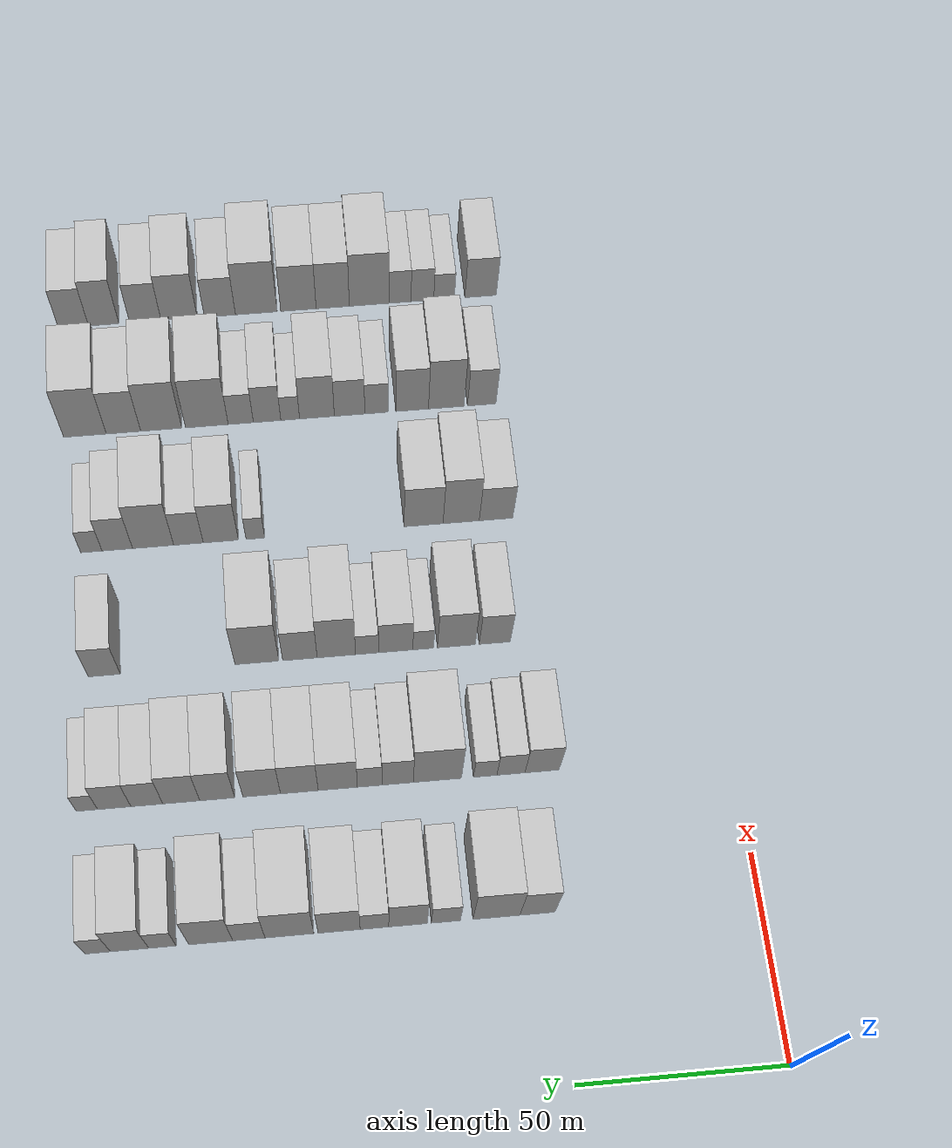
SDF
<sdf version="1.6">
 <world name="default">
  <model name="building_70">
   <static>1</static>
   <pose>50.0000 53.6699 0 0.000000 0.000000 0.000000</pose>
   <link name="link">
    <pose>0 0 10.50 0 0 0</pose>
    <collision name="collision"><geometry><box><size>20.0000 8.4412 21.0000</size></box></geometry></collision>
    <visual name="visual">
     <cast_shadows>0</cast_shadows>
     <geometry><box><size>20.0000 8.4412 21.0000</size></box></geometry>
     <material>
      <script>
       <uri>model://HANNAS_wall/materials/scripts</uri>
       <uri>model://HANNAS_wall/materials/textures</uri>
       <name>vrc/HANNAS_wall</name>
      </script>
     </material>
    </visual>
   </link>
  </model>
  <model name="building_71">
   <static>1</static>
   <pose>50.0000 63.5359 0 0.000000 0.000000 0.000000</pose>
   <link name="link">
    <pose>0 0 12.00 0 0 0</pose>
    <collision name="collision"><geometry><box><size>20.0000 11.2910 24.0000</size></box></geometry></collision>
    <visual name="visual">
     <cast_shadows>0</cast_shadows>
     <geometry><box><size>20.0000 11.2910 24.0000</size></box></geometry>
     <material>
      <script>
       <uri>model://HANNAS_wall/materials/scripts</uri>
       <uri>model://HANNAS_wall/materials/textures</uri>
       <name>vrc/HANNAS_wall</name>
      </script>
     </material>
    </visual>
   </link>
  </model>
  <model name="building_72">
   <static>1</static>
   <pose>50.0000 75.6655 0 0.000000 0.000000 0.000000</pose>
   <link name="link">
    <pose>0 0 7.50 0 0 0</pose>
    <collision name="collision"><geometry><box><size>20.0000 6.9681 15.0000</size></box></geometry></collision>
    <visual name="visual">
     <cast_shadows>0</cast_shadows>
     <geometry><box><size>20.0000 6.9681 15.0000</size></box></geometry>
     <material>
      <script>
       <uri>model://HANNAS_wall/materials/scripts</uri>
       <uri>model://HANNAS_wall/materials/textures</uri>
       <name>vrc/HANNAS_wall</name>
      </script>
     </material>
    </visual>
   </link>
  </model>
  <model name="building_73">
   <static>1</static>
   <pose>50.0000 84.7459 0 0.000000 0.000000 0.000000</pose>
   <link name="link">
    <pose>0 0 10.50 0 0 0</pose>
    <collision name="collision"><geometry><box><size>20.0000 9.1926 21.0000</size></box></geometry></collision>
    <visual name="visual">
     <cast_shadows>0</cast_shadows>
     <geometry><box><size>20.0000 9.1926 21.0000</size></box></geometry>
     <material>
      <script>
       <uri>model://HANNAS_wall/materials/scripts</uri>
       <uri>model://HANNAS_wall/materials/textures</uri>
       <name>vrc/HANNAS_wall</name>
      </script>
     </material>
    </visual>
   </link>
  </model>
  <model name="building_74">
   <static>1</static>
   <pose>50.0000 92.7533 0 0.000000 0.000000 0.000000</pose>
   <link name="link">
    <pose>0 0 7.50 0 0 0</pose>
    <collision name="collision"><geometry><box><size>20.0000 6.8224 15.0000</size></box></geometry></collision>
    <visual name="visual">
     <cast_shadows>0</cast_shadows>
     <geometry><box><size>20.0000 6.8224 15.0000</size></box></geometry>
     <material>
      <script>
       <uri>model://HANNAS_wall/materials/scripts</uri>
       <uri>model://HANNAS_wall/materials/textures</uri>
       <name>vrc/HANNAS_wall</name>
      </script>
     </material>
    </visual>
   </link>
  </model>
  <model name="building_75">
   <static>1</static>
   <pose>50.0000 101.1883 0 0.000000 0.000000 0.000000</pose>
   <link name="link">
    <pose>0 0 10.50 0 0 0</pose>
    <collision name="collision"><geometry><box><size>20.0000 10.0476 21.0000</size></box></geometry></collision>
    <visual name="visual">
     <cast_shadows>0</cast_shadows>
     <geometry><box><size>20.0000 10.0476 21.0000</size></box></geometry>
     <material>
      <script>
       <uri>model://HANNAS_wall/materials/scripts</uri>
       <uri>model://HANNAS_wall/materials/textures</uri>
       <name>vrc/HANNAS_wall</name>
      </script>
     </material>
    </visual>
   </link>
  </model>
  <model name="building_76">
   <static>1</static>
   <pose>50.0000 113.0209 0 0.000000 0.000000 0.000000</pose>
   <link name="link">
    <pose>0 0 12.00 0 0 0</pose>
    <collision name="collision"><geometry><box><size>20.0000 11.6175 24.0000</size></box></geometry></collision>
    <visual name="visual">
     <cast_shadows>0</cast_shadows>
     <geometry><box><size>20.0000 11.6175 24.0000</size></box></geometry>
     <material>
      <script>
       <uri>model://HANNAS_wall/materials/scripts</uri>
       <uri>model://HANNAS_wall/materials/textures</uri>
       <name>vrc/HANNAS_wall</name>
      </script>
     </material>
    </visual>
   </link>
  </model>
  <model name="building_77">
   <static>1</static>
   <pose>50.0000 122.6639 0 0.000000 0.000000 0.000000</pose>
   <link name="link">
    <pose>0 0 9.00 0 0 0</pose>
    <collision name="collision"><geometry><box><size>20.0000 7.6685 18.0000</size></box></geometry></collision>
    <visual name="visual">
     <cast_shadows>0</cast_shadows>
     <geometry><box><size>20.0000 7.6685 18.0000</size></box></geometry>
     <material>
      <script>
       <uri>model://HANNAS_wall/materials/scripts</uri>
       <uri>model://HANNAS_wall/materials/textures</uri>
       <name>vrc/HANNAS_wall</name>
      </script>
     </material>
    </visual>
   </link>
  </model>
  <model name="building_78">
   <static>1</static>
   <pose>50.0000 131.7080 0 0.000000 0.000000 0.000000</pose>
   <link name="link">
    <pose>0 0 12.00 0 0 0</pose>
    <collision name="collision"><geometry><box><size>20.0000 10.4198 24.0000</size></box></geometry></collision>
    <visual name="visual">
     <cast_shadows>0</cast_shadows>
     <geometry><box><size>20.0000 10.4198 24.0000</size></box></geometry>
     <material>
      <script>
       <uri>model://HANNAS_wall/materials/scripts</uri>
       <uri>model://HANNAS_wall/materials/textures</uri>
       <name>vrc/HANNAS_wall</name>
      </script>
     </material>
    </visual>
   </link>
  </model>
  <model name="building_79">
   <static>1</static>
   <pose>50.0000 143.1568 0 0.000000 0.000000 0.000000</pose>
   <link name="link">
    <pose>0 0 7.50 0 0 0</pose>
    <collision name="collision"><geometry><box><size>20.0000 6.4778 15.0000</size></box></geometry></collision>
    <visual name="visual">
     <cast_shadows>0</cast_shadows>
     <geometry><box><size>20.0000 6.4778 15.0000</size></box></geometry>
     <material>
      <script>
       <uri>model://HANNAS_wall/materials/scripts</uri>
       <uri>model://HANNAS_wall/materials/textures</uri>
       <name>vrc/HANNAS_wall</name>
      </script>
     </material>
    </visual>
   </link>
  </model>
  <model name="building_80">
   <static>1</static>
   <pose>50.0000 150.9256 0 0.000000 0.000000 0.000000</pose>
   <link name="link">
    <pose>0 0 10.50 0 0 0</pose>
    <collision name="collision"><geometry><box><size>20.0000 9.0598 21.0000</size></box></geometry></collision>
    <visual name="visual">
     <cast_shadows>0</cast_shadows>
     <geometry><box><size>20.0000 9.0598 21.0000</size></box></geometry>
     <material>
      <script>
       <uri>model://HANNAS_wall/materials/scripts</uri>
       <uri>model://HANNAS_wall/materials/textures</uri>
       <name>vrc/HANNAS_wall</name>
      </script>
     </material>
    </visual>
   </link>
  </model>
  <model name="building_81">
   <static>1</static>
   <pose>50.0000 158.4920 0 0.000000 0.000000 0.000000</pose>
   <link name="link">
    <pose>0 0 7.50 0 0 0</pose>
    <collision name="collision"><geometry><box><size>20.0000 6.0730 15.0000</size></box></geometry></collision>
    <visual name="visual">
     <cast_shadows>0</cast_shadows>
     <geometry><box><size>20.0000 6.0730 15.0000</size></box></geometry>
     <material>
      <script>
       <uri>model://HANNAS_wall/materials/scripts</uri>
       <uri>model://HANNAS_wall/materials/textures</uri>
       <name>vrc/HANNAS_wall</name>
      </script>
     </material>
    </visual>
   </link>
  </model>
  <model name="building_202">
   <static>1</static>
   <pose>85.0000 48.0870 0 0.000000 0.000000 0.000000</pose>
   <link name="link">
    <pose>0 0 9.00 0 0 0</pose>
    <collision name="collision"><geometry><box><size>20.0000 8.5238 18.0000</size></box></geometry></collision>
    <visual name="visual">
     <cast_shadows>0</cast_shadows>
     <geometry><box><size>20.0000 8.5238 18.0000</size></box></geometry>
     <material>
      <script>
       <uri>model://HANNAS_wall/materials/scripts</uri>
       <uri>model://HANNAS_wall/materials/textures</uri>
       <name>vrc/HANNAS_wall</name>
      </script>
     </material>
    </visual>
   </link>
  </model>
  <model name="building_203">
   <static>1</static>
   <pose>85.0000 55.8380 0 0.000000 0.000000 0.000000</pose>
   <link name="link">
    <pose>0 0 7.50 0 0 0</pose>
    <collision name="collision"><geometry><box><size>20.0000 6.9782 15.0000</size></box></geometry></collision>
    <visual name="visual">
     <cast_shadows>0</cast_shadows>
     <geometry><box><size>20.0000 6.9782 15.0000</size></box></geometry>
     <material>
      <script>
       <uri>model://HANNAS_wall/materials/scripts</uri>
       <uri>model://HANNAS_wall/materials/textures</uri>
       <name>vrc/HANNAS_wall</name>
      </script>
     </material>
    </visual>
   </link>
  </model>
  <model name="building_204">
   <static>1</static>
   <pose>85.0000 62.2405 0 0.000000 0.000000 0.000000</pose>
   <link name="link">
    <pose>0 0 6.00 0 0 0</pose>
    <collision name="collision"><geometry><box><size>20.0000 5.8268 12.0000</size></box></geometry></collision>
    <visual name="visual">
     <cast_shadows>0</cast_shadows>
     <geometry><box><size>20.0000 5.8268 12.0000</size></box></geometry>
     <material>
      <script>
       <uri>model://HANNAS_wall/materials/scripts</uri>
       <uri>model://HANNAS_wall/materials/textures</uri>
       <name>vrc/HANNAS_wall</name>
      </script>
     </material>
    </visual>
   </link>
  </model>
  <model name="building_205">
   <static>1</static>
   <pose>85.0000 74.1417 0 0.000000 0.000000 0.000000</pose>
   <link name="link">
    <pose>0 0 12.00 0 0 0</pose>
    <collision name="collision"><geometry><box><size>20.0000 11.9755 24.0000</size></box></geometry></collision>
    <visual name="visual">
     <cast_shadows>0</cast_shadows>
     <geometry><box><size>20.0000 11.9755 24.0000</size></box></geometry>
     <material>
      <script>
       <uri>model://HANNAS_wall/materials/scripts</uri>
       <uri>model://HANNAS_wall/materials/textures</uri>
       <name>vrc/HANNAS_wall</name>
      </script>
     </material>
    </visual>
   </link>
  </model>
  <model name="building_206">
   <static>1</static>
   <pose>85.0000 83.9977 0 0.000000 0.000000 0.000000</pose>
   <link name="link">
    <pose>0 0 9.00 0 0 0</pose>
    <collision name="collision"><geometry><box><size>20.0000 7.7365 18.0000</size></box></geometry></collision>
    <visual name="visual">
     <cast_shadows>0</cast_shadows>
     <geometry><box><size>20.0000 7.7365 18.0000</size></box></geometry>
     <material>
      <script>
       <uri>model://HANNAS_wall/materials/scripts</uri>
       <uri>model://HANNAS_wall/materials/textures</uri>
       <name>vrc/HANNAS_wall</name>
      </script>
     </material>
    </visual>
   </link>
  </model>
  <model name="building_207">
   <static>1</static>
   <pose>85.0000 90.9158 0 0.000000 0.000000 0.000000</pose>
   <link name="link">
    <pose>0 0 7.50 0 0 0</pose>
    <collision name="collision"><geometry><box><size>20.0000 6.0998 15.0000</size></box></geometry></collision>
    <visual name="visual">
     <cast_shadows>0</cast_shadows>
     <geometry><box><size>20.0000 6.0998 15.0000</size></box></geometry>
     <material>
      <script>
       <uri>model://HANNAS_wall/materials/scripts</uri>
       <uri>model://HANNAS_wall/materials/textures</uri>
       <name>vrc/HANNAS_wall</name>
      </script>
     </material>
    </visual>
   </link>
  </model>
  <model name="building_208">
   <static>1</static>
   <pose>85.0000 98.7975 0 0.000000 0.000000 0.000000</pose>
   <link name="link">
    <pose>0 0 10.50 0 0 0</pose>
    <collision name="collision"><geometry><box><size>20.0000 9.6634 21.0000</size></box></geometry></collision>
    <visual name="visual">
     <cast_shadows>0</cast_shadows>
     <geometry><box><size>20.0000 9.6634 21.0000</size></box></geometry>
     <material>
      <script>
       <uri>model://HANNAS_wall/materials/scripts</uri>
       <uri>model://HANNAS_wall/materials/textures</uri>
       <name>vrc/HANNAS_wall</name>
      </script>
     </material>
    </visual>
   </link>
  </model>
  <model name="building_209">
   <static>1</static>
   <pose>85.0000 108.2977 0 0.000000 0.000000 0.000000</pose>
   <link name="link">
    <pose>0 0 10.50 0 0 0</pose>
    <collision name="collision"><geometry><box><size>20.0000 9.3371 21.0000</size></box></geometry></collision>
    <visual name="visual">
     <cast_shadows>0</cast_shadows>
     <geometry><box><size>20.0000 9.3371 21.0000</size></box></geometry>
     <material>
      <script>
       <uri>model://HANNAS_wall/materials/scripts</uri>
       <uri>model://HANNAS_wall/materials/textures</uri>
       <name>vrc/HANNAS_wall</name>
      </script>
     </material>
    </visual>
   </link>
  </model>
  <model name="building_210">
   <static>1</static>
   <pose>85.0000 117.5897 0 0.000000 0.000000 0.000000</pose>
   <link name="link">
    <pose>0 0 10.50 0 0 0</pose>
    <collision name="collision"><geometry><box><size>20.0000 9.2468 21.0000</size></box></geometry></collision>
    <visual name="visual">
     <cast_shadows>0</cast_shadows>
     <geometry><box><size>20.0000 9.2468 21.0000</size></box></geometry>
     <material>
      <script>
       <uri>model://HANNAS_wall/materials/scripts</uri>
       <uri>model://HANNAS_wall/materials/textures</uri>
       <name>vrc/HANNAS_wall</name>
      </script>
     </material>
    </visual>
   </link>
  </model>
  <model name="building_211">
   <static>1</static>
   <pose>85.0000 128.5301 0 0.000000 0.000000 0.000000</pose>
   <link name="link">
    <pose>0 0 10.50 0 0 0</pose>
    <collision name="collision"><geometry><box><size>20.0000 8.6341 21.0000</size></box></geometry></collision>
    <visual name="visual">
     <cast_shadows>0</cast_shadows>
     <geometry><box><size>20.0000 8.6341 21.0000</size></box></geometry>
     <material>
      <script>
       <uri>model://HANNAS_wall/materials/scripts</uri>
       <uri>model://HANNAS_wall/materials/textures</uri>
       <name>vrc/HANNAS_wall</name>
      </script>
     </material>
    </visual>
   </link>
  </model>
  <model name="building_212">
   <static>1</static>
   <pose>85.0000 137.3827 0 0.000000 0.000000 0.000000</pose>
   <link name="link">
    <pose>0 0 10.50 0 0 0</pose>
    <collision name="collision"><geometry><box><size>20.0000 9.0710 21.0000</size></box></geometry></collision>
    <visual name="visual">
     <cast_shadows>0</cast_shadows>
     <geometry><box><size>20.0000 9.0710 21.0000</size></box></geometry>
     <material>
      <script>
       <uri>model://HANNAS_wall/materials/scripts</uri>
       <uri>model://HANNAS_wall/materials/textures</uri>
       <name>vrc/HANNAS_wall</name>
      </script>
     </material>
    </visual>
   </link>
  </model>
  <model name="building_213">
   <static>1</static>
   <pose>85.0000 145.8325 0 0.000000 0.000000 0.000000</pose>
   <link name="link">
    <pose>0 0 9.00 0 0 0</pose>
    <collision name="collision"><geometry><box><size>20.0000 7.8288 18.0000</size></box></geometry></collision>
    <visual name="visual">
     <cast_shadows>0</cast_shadows>
     <geometry><box><size>20.0000 7.8288 18.0000</size></box></geometry>
     <material>
      <script>
       <uri>model://HANNAS_wall/materials/scripts</uri>
       <uri>model://HANNAS_wall/materials/textures</uri>
       <name>vrc/HANNAS_wall</name>
      </script>
     </material>
    </visual>
   </link>
  </model>
  <model name="building_214">
   <static>1</static>
   <pose>85.0000 153.8229 0 0.000000 0.000000 0.000000</pose>
   <link name="link">
    <pose>0 0 9.00 0 0 0</pose>
    <collision name="collision"><geometry><box><size>20.0000 8.1519 18.0000</size></box></geometry></collision>
    <visual name="visual">
     <cast_shadows>0</cast_shadows>
     <geometry><box><size>20.0000 8.1519 18.0000</size></box></geometry>
     <material>
      <script>
       <uri>model://HANNAS_wall/materials/scripts</uri>
       <uri>model://HANNAS_wall/materials/textures</uri>
       <name>vrc/HANNAS_wall</name>
      </script>
     </material>
    </visual>
   </link>
  </model>
  <model name="building_215">
   <static>1</static>
   <pose>85.0000 160.4921 0 0.000000 0.000000 0.000000</pose>
   <link name="link">
    <pose>0 0 6.00 0 0 0</pose>
    <collision name="collision"><geometry><box><size>20.0000 5.1866 12.0000</size></box></geometry></collision>
    <visual name="visual">
     <cast_shadows>0</cast_shadows>
     <geometry><box><size>20.0000 5.1866 12.0000</size></box></geometry>
     <material>
      <script>
       <uri>model://HANNAS_wall/materials/scripts</uri>
       <uri>model://HANNAS_wall/materials/textures</uri>
       <name>vrc/HANNAS_wall</name>
      </script>
     </material>
    </visual>
   </link>
  </model>
  <model name="building_338">
   <static>1</static>
   <pose>120.0000 55.7942 0 0.000000 0.000000 0.000000</pose>
   <link name="link">
    <pose>0 0 9.00 0 0 0</pose>
    <collision name="collision"><geometry><box><size>20.0000 8.0292 18.0000</size></box></geometry></collision>
    <visual name="visual">
     <cast_shadows>0</cast_shadows>
     <geometry><box><size>20.0000 8.0292 18.0000</size></box></geometry>
     <material>
      <script>
       <uri>model://HANNAS_wall/materials/scripts</uri>
       <uri>model://HANNAS_wall/materials/textures</uri>
       <name>vrc/HANNAS_wall</name>
      </script>
     </material>
    </visual>
   </link>
  </model>
  <model name="building_339">
   <static>1</static>
   <pose>120.0000 65.6816 0 0.000000 0.000000 0.000000</pose>
   <link name="link">
    <pose>0 0 10.50 0 0 0</pose>
    <collision name="collision"><geometry><box><size>20.0000 9.7455 21.0000</size></box></geometry></collision>
    <visual name="visual">
     <cast_shadows>0</cast_shadows>
     <geometry><box><size>20.0000 9.7455 21.0000</size></box></geometry>
     <material>
      <script>
       <uri>model://HANNAS_wall/materials/scripts</uri>
       <uri>model://HANNAS_wall/materials/textures</uri>
       <name>vrc/HANNAS_wall</name>
      </script>
     </material>
    </visual>
   </link>
  </model>
  <model name="building_340">
   <static>1</static>
   <pose>120.0000 74.2242 0 0.000000 0.000000 0.000000</pose>
   <link name="link">
    <pose>0 0 6.00 0 0 0</pose>
    <collision name="collision"><geometry><box><size>20.0000 5.3397 12.0000</size></box></geometry></collision>
    <visual name="visual">
     <cast_shadows>0</cast_shadows>
     <geometry><box><size>20.0000 5.3397 12.0000</size></box></geometry>
     <material>
      <script>
       <uri>model://HANNAS_wall/materials/scripts</uri>
       <uri>model://HANNAS_wall/materials/textures</uri>
       <name>vrc/HANNAS_wall</name>
      </script>
     </material>
    </visual>
   </link>
  </model>
  <model name="building_341">
   <static>1</static>
   <pose>120.0000 81.2812 0 0.000000 0.000000 0.000000</pose>
   <link name="link">
    <pose>0 0 9.00 0 0 0</pose>
    <collision name="collision"><geometry><box><size>20.0000 8.7742 18.0000</size></box></geometry></collision>
    <visual name="visual">
     <cast_shadows>0</cast_shadows>
     <geometry><box><size>20.0000 8.7742 18.0000</size></box></geometry>
     <material>
      <script>
       <uri>model://HANNAS_wall/materials/scripts</uri>
       <uri>model://HANNAS_wall/materials/textures</uri>
       <name>vrc/HANNAS_wall</name>
      </script>
     </material>
    </visual>
   </link>
  </model>
  <model name="building_342">
   <static>1</static>
   <pose>120.0000 88.6239 0 0.000000 0.000000 0.000000</pose>
   <link name="link">
    <pose>0 0 6.00 0 0 0</pose>
    <collision name="collision"><geometry><box><size>20.0000 5.9112 12.0000</size></box></geometry></collision>
    <visual name="visual">
     <cast_shadows>0</cast_shadows>
     <geometry><box><size>20.0000 5.9112 12.0000</size></box></geometry>
     <material>
      <script>
       <uri>model://HANNAS_wall/materials/scripts</uri>
       <uri>model://HANNAS_wall/materials/textures</uri>
       <name>vrc/HANNAS_wall</name>
      </script>
     </material>
    </visual>
   </link>
  </model>
  <model name="building_343">
   <static>1</static>
   <pose>120.0000 96.4826 0 0.000000 0.000000 0.000000</pose>
   <link name="link">
    <pose>0 0 12.00 0 0 0</pose>
    <collision name="collision"><geometry><box><size>20.0000 9.8063 24.0000</size></box></geometry></collision>
    <visual name="visual">
     <cast_shadows>0</cast_shadows>
     <geometry><box><size>20.0000 9.8063 24.0000</size></box></geometry>
     <material>
      <script>
       <uri>model://HANNAS_wall/materials/scripts</uri>
       <uri>model://HANNAS_wall/materials/textures</uri>
       <name>vrc/HANNAS_wall</name>
      </script>
     </material>
    </visual>
   </link>
  </model>
  <model name="building_344">
   <static>1</static>
   <pose>120.0000 105.7852 0 0.000000 0.000000 0.000000</pose>
   <link name="link">
    <pose>0 0 9.00 0 0 0</pose>
    <collision name="collision"><geometry><box><size>20.0000 8.7987 18.0000</size></box></geometry></collision>
    <visual name="visual">
     <cast_shadows>0</cast_shadows>
     <geometry><box><size>20.0000 8.7987 18.0000</size></box></geometry>
     <material>
      <script>
       <uri>model://HANNAS_wall/materials/scripts</uri>
       <uri>model://HANNAS_wall/materials/textures</uri>
       <name>vrc/HANNAS_wall</name>
      </script>
     </material>
    </visual>
   </link>
  </model>
  <model name="building_345">
   <static>1</static>
   <pose>120.0000 116.7790 0 0.000000 0.000000 0.000000</pose>
   <link name="link">
    <pose>0 0 12.00 0 0 0</pose>
    <collision name="collision"><geometry><box><size>20.0000 11.1890 24.0000</size></box></geometry></collision>
    <visual name="visual">
     <cast_shadows>0</cast_shadows>
     <geometry><box><size>20.0000 11.1890 24.0000</size></box></geometry>
     <material>
      <script>
       <uri>model://HANNAS_wall/materials/scripts</uri>
       <uri>model://HANNAS_wall/materials/textures</uri>
       <name>vrc/HANNAS_wall</name>
      </script>
     </material>
    </visual>
   </link>
  </model>
  <model name="building_346">
   <static>1</static>
   <pose>120.0000 155.6186 0 0.000000 0.000000 0.000000</pose>
   <link name="link">
    <pose>0 0 9.00 0 0 0</pose>
    <collision name="collision"><geometry><box><size>20.0000 8.1634 18.0000</size></box></geometry></collision>
    <visual name="visual">
     <cast_shadows>0</cast_shadows>
     <geometry><box><size>20.0000 8.1634 18.0000</size></box></geometry>
     <material>
      <script>
       <uri>model://HANNAS_wall/materials/scripts</uri>
       <uri>model://HANNAS_wall/materials/textures</uri>
       <name>vrc/HANNAS_wall</name>
      </script>
     </material>
    </visual>
   </link>
  </model>
  <model name="building_462">
   <static>1</static>
   <pose>155.0000 51.3734 0 0.000000 0.000000 0.000000</pose>
   <link name="link">
    <pose>0 0 9.00 0 0 0</pose>
    <collision name="collision"><geometry><box><size>20.0000 8.9335 18.0000</size></box></geometry></collision>
    <visual name="visual">
     <cast_shadows>0</cast_shadows>
     <geometry><box><size>20.0000 8.9335 18.0000</size></box></geometry>
     <material>
      <script>
       <uri>model://HANNAS_wall/materials/scripts</uri>
       <uri>model://HANNAS_wall/materials/textures</uri>
       <name>vrc/HANNAS_wall</name>
      </script>
     </material>
    </visual>
   </link>
  </model>
  <model name="building_463">
   <static>1</static>
   <pose>155.0000 60.6593 0 0.000000 0.000000 0.000000</pose>
   <link name="link">
    <pose>0 0 12.00 0 0 0</pose>
    <collision name="collision"><geometry><box><size>20.0000 9.6381 24.0000</size></box></geometry></collision>
    <visual name="visual">
     <cast_shadows>0</cast_shadows>
     <geometry><box><size>20.0000 9.6381 24.0000</size></box></geometry>
     <material>
      <script>
       <uri>model://HANNAS_wall/materials/scripts</uri>
       <uri>model://HANNAS_wall/materials/textures</uri>
       <name>vrc/HANNAS_wall</name>
      </script>
     </material>
    </visual>
   </link>
  </model>
  <model name="building_464">
   <static>1</static>
   <pose>155.0000 70.6663 0 0.000000 0.000000 0.000000</pose>
   <link name="link">
    <pose>0 0 10.50 0 0 0</pose>
    <collision name="collision"><geometry><box><size>20.0000 10.3759 21.0000</size></box></geometry></collision>
    <visual name="visual">
     <cast_shadows>0</cast_shadows>
     <geometry><box><size>20.0000 10.3759 21.0000</size></box></geometry>
     <material>
      <script>
       <uri>model://HANNAS_wall/materials/scripts</uri>
       <uri>model://HANNAS_wall/materials/textures</uri>
       <name>vrc/HANNAS_wall</name>
      </script>
     </material>
    </visual>
   </link>
  </model>
  <model name="building_465">
   <static>1</static>
   <pose>155.0000 115.2069 0 0.000000 0.000000 0.000000</pose>
   <link name="link">
    <pose>0 0 6.00 0 0 0</pose>
    <collision name="collision"><geometry><box><size>20.0000 4.9018 12.0000</size></box></geometry></collision>
    <visual name="visual">
     <cast_shadows>0</cast_shadows>
     <geometry><box><size>20.0000 4.9018 12.0000</size></box></geometry>
     <material>
      <script>
       <uri>model://HANNAS_wall/materials/scripts</uri>
       <uri>model://HANNAS_wall/materials/textures</uri>
       <name>vrc/HANNAS_wall</name>
      </script>
     </material>
    </visual>
   </link>
  </model>
  <model name="building_466">
   <static>1</static>
   <pose>155.0000 124.3087 0 0.000000 0.000000 0.000000</pose>
   <link name="link">
    <pose>0 0 10.50 0 0 0</pose>
    <collision name="collision"><geometry><box><size>20.0000 9.3017 21.0000</size></box></geometry></collision>
    <visual name="visual">
     <cast_shadows>0</cast_shadows>
     <geometry><box><size>20.0000 9.3017 21.0000</size></box></geometry>
     <material>
      <script>
       <uri>model://HANNAS_wall/materials/scripts</uri>
       <uri>model://HANNAS_wall/materials/textures</uri>
       <name>vrc/HANNAS_wall</name>
      </script>
     </material>
    </visual>
   </link>
  </model>
  <model name="building_467">
   <static>1</static>
   <pose>155.0000 132.8386 0 0.000000 0.000000 0.000000</pose>
   <link name="link">
    <pose>0 0 9.00 0 0 0</pose>
    <collision name="collision"><geometry><box><size>20.0000 7.7582 18.0000</size></box></geometry></collision>
    <visual name="visual">
     <cast_shadows>0</cast_shadows>
     <geometry><box><size>20.0000 7.7582 18.0000</size></box></geometry>
     <material>
      <script>
       <uri>model://HANNAS_wall/materials/scripts</uri>
       <uri>model://HANNAS_wall/materials/textures</uri>
       <name>vrc/HANNAS_wall</name>
      </script>
     </material>
    </visual>
   </link>
  </model>
  <model name="building_468">
   <static>1</static>
   <pose>155.0000 142.1238 0 0.000000 0.000000 0.000000</pose>
   <link name="link">
    <pose>0 0 12.00 0 0 0</pose>
    <collision name="collision"><geometry><box><size>20.0000 10.8122 24.0000</size></box></geometry></collision>
    <visual name="visual">
     <cast_shadows>0</cast_shadows>
     <geometry><box><size>20.0000 10.8122 24.0000</size></box></geometry>
     <material>
      <script>
       <uri>model://HANNAS_wall/materials/scripts</uri>
       <uri>model://HANNAS_wall/materials/textures</uri>
       <name>vrc/HANNAS_wall</name>
      </script>
     </material>
    </visual>
   </link>
  </model>
  <model name="building_469">
   <static>1</static>
   <pose>155.0000 151.5385 0 0.000000 0.000000 0.000000</pose>
   <link name="link">
    <pose>0 0 9.00 0 0 0</pose>
    <collision name="collision"><geometry><box><size>20.0000 8.0171 18.0000</size></box></geometry></collision>
    <visual name="visual">
     <cast_shadows>0</cast_shadows>
     <geometry><box><size>20.0000 8.0171 18.0000</size></box></geometry>
     <material>
      <script>
       <uri>model://HANNAS_wall/materials/scripts</uri>
       <uri>model://HANNAS_wall/materials/textures</uri>
       <name>vrc/HANNAS_wall</name>
      </script>
     </material>
    </visual>
   </link>
  </model>
  <model name="building_470">
   <static>1</static>
   <pose>155.0000 158.3298 0 0.000000 0.000000 0.000000</pose>
   <link name="link">
    <pose>0 0 6.00 0 0 0</pose>
    <collision name="collision"><geometry><box><size>20.0000 5.5655 12.0000</size></box></geometry></collision>
    <visual name="visual">
     <cast_shadows>0</cast_shadows>
     <geometry><box><size>20.0000 5.5655 12.0000</size></box></geometry>
     <material>
      <script>
       <uri>model://HANNAS_wall/materials/scripts</uri>
       <uri>model://HANNAS_wall/materials/textures</uri>
       <name>vrc/HANNAS_wall</name>
      </script>
     </material>
    </visual>
   </link>
  </model>
  <model name="building_588">
   <static>1</static>
   <pose>190.0000 51.2252 0 0.000000 0.000000 0.000000</pose>
   <link name="link">
    <pose>0 0 9.00 0 0 0</pose>
    <collision name="collision"><geometry><box><size>20.0000 7.7980 18.0000</size></box></geometry></collision>
    <visual name="visual">
     <cast_shadows>0</cast_shadows>
     <geometry><box><size>20.0000 7.7980 18.0000</size></box></geometry>
     <material>
      <script>
       <uri>model://HANNAS_wall/materials/scripts</uri>
       <uri>model://HANNAS_wall/materials/textures</uri>
       <name>vrc/HANNAS_wall</name>
      </script>
     </material>
    </visual>
   </link>
  </model>
  <model name="building_589">
   <static>1</static>
   <pose>190.0000 60.9954 0 0.000000 0.000000 0.000000</pose>
   <link name="link">
    <pose>0 0 12.00 0 0 0</pose>
    <collision name="collision"><geometry><box><size>20.0000 9.7425 24.0000</size></box></geometry></collision>
    <visual name="visual">
     <cast_shadows>0</cast_shadows>
     <geometry><box><size>20.0000 9.7425 24.0000</size></box></geometry>
     <material>
      <script>
       <uri>model://HANNAS_wall/materials/scripts</uri>
       <uri>model://HANNAS_wall/materials/textures</uri>
       <name>vrc/HANNAS_wall</name>
      </script>
     </material>
    </visual>
   </link>
  </model>
  <model name="building_590">
   <static>1</static>
   <pose>190.0000 70.3441 0 0.000000 0.000000 0.000000</pose>
   <link name="link">
    <pose>0 0 10.50 0 0 0</pose>
    <collision name="collision"><geometry><box><size>20.0000 8.9550 21.0000</size></box></geometry></collision>
    <visual name="visual">
     <cast_shadows>0</cast_shadows>
     <geometry><box><size>20.0000 8.9550 21.0000</size></box></geometry>
     <material>
      <script>
       <uri>model://HANNAS_wall/materials/scripts</uri>
       <uri>model://HANNAS_wall/materials/textures</uri>
       <name>vrc/HANNAS_wall</name>
      </script>
     </material>
    </visual>
   </link>
  </model>
  <model name="building_591">
   <static>1</static>
   <pose>190.0000 80.0796 0 0.000000 0.000000 0.000000</pose>
   <link name="link">
    <pose>0 0 7.50 0 0 0</pose>
    <collision name="collision"><geometry><box><size>20.0000 6.5159 15.0000</size></box></geometry></collision>
    <visual name="visual">
     <cast_shadows>0</cast_shadows>
     <geometry><box><size>20.0000 6.5159 15.0000</size></box></geometry>
     <material>
      <script>
       <uri>model://HANNAS_wall/materials/scripts</uri>
       <uri>model://HANNAS_wall/materials/textures</uri>
       <name>vrc/HANNAS_wall</name>
      </script>
     </material>
    </visual>
   </link>
  </model>
  <model name="building_592">
   <static>1</static>
   <pose>190.0000 87.5049 0 0.000000 0.000000 0.000000</pose>
   <link name="link">
    <pose>0 0 9.00 0 0 0</pose>
    <collision name="collision"><geometry><box><size>20.0000 8.3349 18.0000</size></box></geometry></collision>
    <visual name="visual">
     <cast_shadows>0</cast_shadows>
     <geometry><box><size>20.0000 8.3349 18.0000</size></box></geometry>
     <material>
      <script>
       <uri>model://HANNAS_wall/materials/scripts</uri>
       <uri>model://HANNAS_wall/materials/textures</uri>
       <name>vrc/HANNAS_wall</name>
      </script>
     </material>
    </visual>
   </link>
  </model>
  <model name="building_593">
   <static>1</static>
   <pose>190.0000 96.4160 0 0.000000 0.000000 0.000000</pose>
   <link name="link">
    <pose>0 0 10.50 0 0 0</pose>
    <collision name="collision"><geometry><box><size>20.0000 9.4874 21.0000</size></box></geometry></collision>
    <visual name="visual">
     <cast_shadows>0</cast_shadows>
     <geometry><box><size>20.0000 9.4874 21.0000</size></box></geometry>
     <material>
      <script>
       <uri>model://HANNAS_wall/materials/scripts</uri>
       <uri>model://HANNAS_wall/materials/textures</uri>
       <name>vrc/HANNAS_wall</name>
      </script>
     </material>
    </visual>
   </link>
  </model>
  <model name="building_594">
   <static>1</static>
   <pose>190.0000 103.7275 0 0.000000 0.000000 0.000000</pose>
   <link name="link">
    <pose>0 0 6.00 0 0 0</pose>
    <collision name="collision"><geometry><box><size>20.0000 5.1356 12.0000</size></box></geometry></collision>
    <visual name="visual">
     <cast_shadows>0</cast_shadows>
     <geometry><box><size>20.0000 5.1356 12.0000</size></box></geometry>
     <material>
      <script>
       <uri>model://HANNAS_wall/materials/scripts</uri>
       <uri>model://HANNAS_wall/materials/textures</uri>
       <name>vrc/HANNAS_wall</name>
      </script>
     </material>
    </visual>
   </link>
  </model>
  <model name="building_595">
   <static>1</static>
   <pose>190.0000 110.0305 0 0.000000 0.000000 0.000000</pose>
   <link name="link">
    <pose>0 0 9.00 0 0 0</pose>
    <collision name="collision"><geometry><box><size>20.0000 7.4704 18.0000</size></box></geometry></collision>
    <visual name="visual">
     <cast_shadows>0</cast_shadows>
     <geometry><box><size>20.0000 7.4704 18.0000</size></box></geometry>
     <material>
      <script>
       <uri>model://HANNAS_wall/materials/scripts</uri>
       <uri>model://HANNAS_wall/materials/textures</uri>
       <name>vrc/HANNAS_wall</name>
      </script>
     </material>
    </visual>
   </link>
  </model>
  <model name="building_596">
   <static>1</static>
   <pose>190.0000 117.1984 0 0.000000 0.000000 0.000000</pose>
   <link name="link">
    <pose>0 0 7.50 0 0 0</pose>
    <collision name="collision"><geometry><box><size>20.0000 6.8654 15.0000</size></box></geometry></collision>
    <visual name="visual">
     <cast_shadows>0</cast_shadows>
     <geometry><box><size>20.0000 6.8654 15.0000</size></box></geometry>
     <material>
      <script>
       <uri>model://HANNAS_wall/materials/scripts</uri>
       <uri>model://HANNAS_wall/materials/textures</uri>
       <name>vrc/HANNAS_wall</name>
      </script>
     </material>
    </visual>
   </link>
  </model>
  <model name="building_597">
   <static>1</static>
   <pose>190.0000 126.4442 0 0.000000 0.000000 0.000000</pose>
   <link name="link">
    <pose>0 0 12.00 0 0 0</pose>
    <collision name="collision"><geometry><box><size>20.0000 11.6263 24.0000</size></box></geometry></collision>
    <visual name="visual">
     <cast_shadows>0</cast_shadows>
     <geometry><box><size>20.0000 11.6263 24.0000</size></box></geometry>
     <material>
      <script>
       <uri>model://HANNAS_wall/materials/scripts</uri>
       <uri>model://HANNAS_wall/materials/textures</uri>
       <name>vrc/HANNAS_wall</name>
      </script>
     </material>
    </visual>
   </link>
  </model>
  <model name="building_598">
   <static>1</static>
   <pose>190.0000 138.8304 0 0.000000 0.000000 0.000000</pose>
   <link name="link">
    <pose>0 0 12.00 0 0 0</pose>
    <collision name="collision"><geometry><box><size>20.0000 11.1459 24.0000</size></box></geometry></collision>
    <visual name="visual">
     <cast_shadows>0</cast_shadows>
     <geometry><box><size>20.0000 11.1459 24.0000</size></box></geometry>
     <material>
      <script>
       <uri>model://HANNAS_wall/materials/scripts</uri>
       <uri>model://HANNAS_wall/materials/textures</uri>
       <name>vrc/HANNAS_wall</name>
      </script>
     </material>
    </visual>
   </link>
  </model>
  <model name="building_599">
   <static>1</static>
   <pose>190.0000 149.0890 0 0.000000 0.000000 0.000000</pose>
   <link name="link">
    <pose>0 0 10.50 0 0 0</pose>
    <collision name="collision"><geometry><box><size>20.0000 9.3715 21.0000</size></box></geometry></collision>
    <visual name="visual">
     <cast_shadows>0</cast_shadows>
     <geometry><box><size>20.0000 9.3715 21.0000</size></box></geometry>
     <material>
      <script>
       <uri>model://HANNAS_wall/materials/scripts</uri>
       <uri>model://HANNAS_wall/materials/textures</uri>
       <name>vrc/HANNAS_wall</name>
      </script>
     </material>
    </visual>
   </link>
  </model>
  <model name="building_600">
   <static>1</static>
   <pose>190.0000 159.5287 0 0.000000 0.000000 0.000000</pose>
   <link name="link">
    <pose>0 0 12.00 0 0 0</pose>
    <collision name="collision"><geometry><box><size>20.0000 11.5079 24.0000</size></box></geometry></collision>
    <visual name="visual">
     <cast_shadows>0</cast_shadows>
     <geometry><box><size>20.0000 11.5079 24.0000</size></box></geometry>
     <material>
      <script>
       <uri>model://HANNAS_wall/materials/scripts</uri>
       <uri>model://HANNAS_wall/materials/textures</uri>
       <name>vrc/HANNAS_wall</name>
      </script>
     </material>
    </visual>
   </link>
  </model>
  <model name="building_713">
   <static>1</static>
   <pose>225.0000 47.5755 0 0.000000 0.000000 0.000000</pose>
   <link name="link">
    <pose>0 0 9.00 0 0 0</pose>
    <collision name="collision"><geometry><box><size>20.0000 8.9098 18.0000</size></box></geometry></collision>
    <visual name="visual">
     <cast_shadows>0</cast_shadows>
     <geometry><box><size>20.0000 8.9098 18.0000</size></box></geometry>
     <material>
      <script>
       <uri>model://HANNAS_wall/materials/scripts</uri>
       <uri>model://HANNAS_wall/materials/textures</uri>
       <name>vrc/HANNAS_wall</name>
      </script>
     </material>
    </visual>
   </link>
  </model>
  <model name="building_714">
   <static>1</static>
   <pose>225.0000 57.9566 0 0.000000 0.000000 0.000000</pose>
   <link name="link">
    <pose>0 0 6.00 0 0 0</pose>
    <collision name="collision"><geometry><box><size>20.0000 5.8524 12.0000</size></box></geometry></collision>
    <visual name="visual">
     <cast_shadows>0</cast_shadows>
     <geometry><box><size>20.0000 5.8524 12.0000</size></box></geometry>
     <material>
      <script>
       <uri>model://HANNAS_wall/materials/scripts</uri>
       <uri>model://HANNAS_wall/materials/textures</uri>
       <name>vrc/HANNAS_wall</name>
      </script>
     </material>
    </visual>
   </link>
  </model>
  <model name="building_715">
   <static>1</static>
   <pose>225.0000 64.1090 0 0.000000 0.000000 0.000000</pose>
   <link name="link">
    <pose>0 0 7.50 0 0 0</pose>
    <collision name="collision"><geometry><box><size>20.0000 6.4525 15.0000</size></box></geometry></collision>
    <visual name="visual">
     <cast_shadows>0</cast_shadows>
     <geometry><box><size>20.0000 6.4525 15.0000</size></box></geometry>
     <material>
      <script>
       <uri>model://HANNAS_wall/materials/scripts</uri>
       <uri>model://HANNAS_wall/materials/textures</uri>
       <name>vrc/HANNAS_wall</name>
      </script>
     </material>
    </visual>
   </link>
  </model>
  <model name="building_716">
   <static>1</static>
   <pose>225.0000 70.4482 0 0.000000 0.000000 0.000000</pose>
   <link name="link">
    <pose>0 0 7.50 0 0 0</pose>
    <collision name="collision"><geometry><box><size>20.0000 6.2259 15.0000</size></box></geometry></collision>
    <visual name="visual">
     <cast_shadows>0</cast_shadows>
     <geometry><box><size>20.0000 6.2259 15.0000</size></box></geometry>
     <material>
      <script>
       <uri>model://HANNAS_wall/materials/scripts</uri>
       <uri>model://HANNAS_wall/materials/textures</uri>
       <name>vrc/HANNAS_wall</name>
      </script>
     </material>
    </visual>
   </link>
  </model>
  <model name="building_717">
   <static>1</static>
   <pose>225.0000 79.1710 0 0.000000 0.000000 0.000000</pose>
   <link name="link">
    <pose>0 0 12.00 0 0 0</pose>
    <collision name="collision"><geometry><box><size>20.0000 11.2197 24.0000</size></box></geometry></collision>
    <visual name="visual">
     <cast_shadows>0</cast_shadows>
     <geometry><box><size>20.0000 11.2197 24.0000</size></box></geometry>
     <material>
      <script>
       <uri>model://HANNAS_wall/materials/scripts</uri>
       <uri>model://HANNAS_wall/materials/textures</uri>
       <name>vrc/HANNAS_wall</name>
      </script>
     </material>
    </visual>
   </link>
  </model>
  <model name="building_718">
   <static>1</static>
   <pose>225.0000 89.4577 0 0.000000 0.000000 0.000000</pose>
   <link name="link">
    <pose>0 0 10.50 0 0 0</pose>
    <collision name="collision"><geometry><box><size>20.0000 9.3537 21.0000</size></box></geometry></collision>
    <visual name="visual">
     <cast_shadows>0</cast_shadows>
     <geometry><box><size>20.0000 9.3537 21.0000</size></box></geometry>
     <material>
      <script>
       <uri>model://HANNAS_wall/materials/scripts</uri>
       <uri>model://HANNAS_wall/materials/textures</uri>
       <name>vrc/HANNAS_wall</name>
      </script>
     </material>
    </visual>
   </link>
  </model>
  <model name="building_719">
   <static>1</static>
   <pose>225.0000 99.1248 0 0.000000 0.000000 0.000000</pose>
   <link name="link">
    <pose>0 0 10.50 0 0 0</pose>
    <collision name="collision"><geometry><box><size>20.0000 9.9805 21.0000</size></box></geometry></collision>
    <visual name="visual">
     <cast_shadows>0</cast_shadows>
     <geometry><box><size>20.0000 9.9805 21.0000</size></box></geometry>
     <material>
      <script>
       <uri>model://HANNAS_wall/materials/scripts</uri>
       <uri>model://HANNAS_wall/materials/textures</uri>
       <name>vrc/HANNAS_wall</name>
      </script>
     </material>
    </visual>
   </link>
  </model>
  <model name="building_720">
   <static>1</static>
   <pose>225.0000 110.9897 0 0.000000 0.000000 0.000000</pose>
   <link name="link">
    <pose>0 0 12.00 0 0 0</pose>
    <collision name="collision"><geometry><box><size>20.0000 11.7492 24.0000</size></box></geometry></collision>
    <visual name="visual">
     <cast_shadows>0</cast_shadows>
     <geometry><box><size>20.0000 11.7492 24.0000</size></box></geometry>
     <material>
      <script>
       <uri>model://HANNAS_wall/materials/scripts</uri>
       <uri>model://HANNAS_wall/materials/textures</uri>
       <name>vrc/HANNAS_wall</name>
      </script>
     </material>
    </visual>
   </link>
  </model>
  <model name="building_721">
   <static>1</static>
   <pose>225.0000 121.2371 0 0.000000 0.000000 0.000000</pose>
   <link name="link">
    <pose>0 0 9.00 0 0 0</pose>
    <collision name="collision"><geometry><box><size>20.0000 8.7457 18.0000</size></box></geometry></collision>
    <visual name="visual">
     <cast_shadows>0</cast_shadows>
     <geometry><box><size>20.0000 8.7457 18.0000</size></box></geometry>
     <material>
      <script>
       <uri>model://HANNAS_wall/materials/scripts</uri>
       <uri>model://HANNAS_wall/materials/textures</uri>
       <name>vrc/HANNAS_wall</name>
      </script>
     </material>
    </visual>
   </link>
  </model>
  <model name="building_722">
   <static>1</static>
   <pose>225.0000 132.6850 0 0.000000 0.000000 0.000000</pose>
   <link name="link">
    <pose>0 0 10.50 0 0 0</pose>
    <collision name="collision"><geometry><box><size>20.0000 10.1501 21.0000</size></box></geometry></collision>
    <visual name="visual">
     <cast_shadows>0</cast_shadows>
     <geometry><box><size>20.0000 10.1501 21.0000</size></box></geometry>
     <material>
      <script>
       <uri>model://HANNAS_wall/materials/scripts</uri>
       <uri>model://HANNAS_wall/materials/textures</uri>
       <name>vrc/HANNAS_wall</name>
      </script>
     </material>
    </visual>
   </link>
  </model>
  <model name="building_723">
   <static>1</static>
   <pose>225.0000 142.1560 0 0.000000 0.000000 0.000000</pose>
   <link name="link">
    <pose>0 0 9.00 0 0 0</pose>
    <collision name="collision"><geometry><box><size>20.0000 8.7920 18.0000</size></box></geometry></collision>
    <visual name="visual">
     <cast_shadows>0</cast_shadows>
     <geometry><box><size>20.0000 8.7920 18.0000</size></box></geometry>
     <material>
      <script>
       <uri>model://HANNAS_wall/materials/scripts</uri>
       <uri>model://HANNAS_wall/materials/textures</uri>
       <name>vrc/HANNAS_wall</name>
      </script>
     </material>
    </visual>
   </link>
  </model>
  <model name="building_724">
   <static>1</static>
   <pose>225.0000 153.8137 0 0.000000 0.000000 0.000000</pose>
   <link name="link">
    <pose>0 0 10.50 0 0 0</pose>
    <collision name="collision"><geometry><box><size>20.0000 8.5235 21.0000</size></box></geometry></collision>
    <visual name="visual">
     <cast_shadows>0</cast_shadows>
     <geometry><box><size>20.0000 8.5235 21.0000</size></box></geometry>
     <material>
      <script>
       <uri>model://HANNAS_wall/materials/scripts</uri>
       <uri>model://HANNAS_wall/materials/textures</uri>
       <name>vrc/HANNAS_wall</name>
      </script>
     </material>
    </visual>
   </link>
  </model>
  <model name="building_725">
   <static>1</static>
   <pose>225.0000 162.2609 0 0.000000 0.000000 0.000000</pose>
   <link name="link">
    <pose>0 0 9.00 0 0 0</pose>
    <collision name="collision"><geometry><box><size>20.0000 8.3710 18.0000</size></box></geometry></collision>
    <visual name="visual">
     <cast_shadows>0</cast_shadows>
     <geometry><box><size>20.0000 8.3710 18.0000</size></box></geometry>
     <material>
      <script>
       <uri>model://HANNAS_wall/materials/scripts</uri>
       <uri>model://HANNAS_wall/materials/textures</uri>
       <name>vrc/HANNAS_wall</name>
      </script>
     </material>
    </visual>
   </link>
  </model>
 </world>
</sdf>
